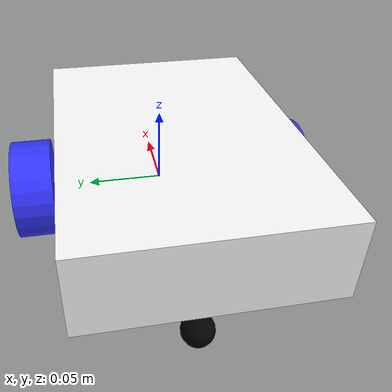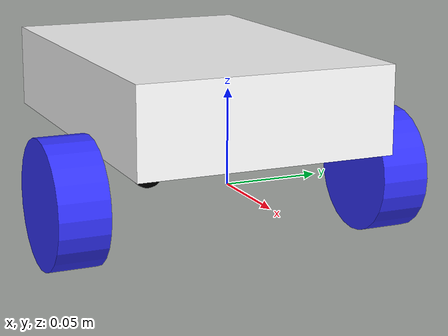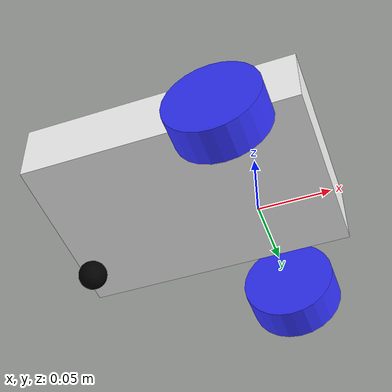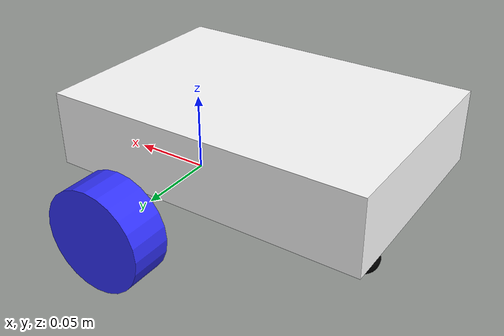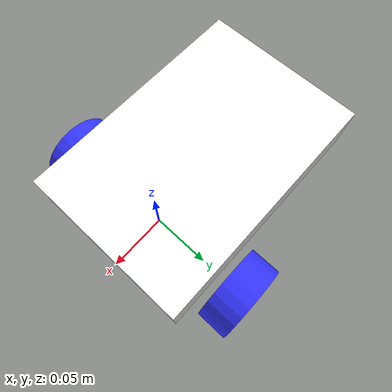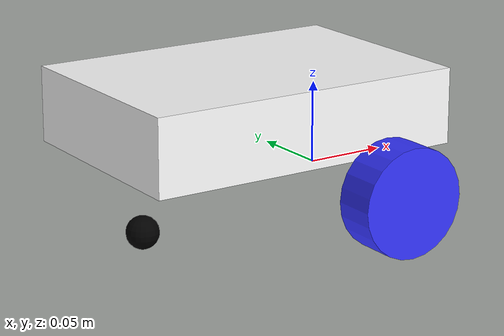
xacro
<?xml version="1.0"?>
<robot xmlns:xacro="http://www.ros.org/wiki/xacro">
    <xacro:include filename="inertial_macros.xacro"/>

    <xacro:property name="chassis_length" value="0.198"/>
    <xacro:property name="chassis_width" value="0.135"/>
    <xacro:property name="chassis_height" value="0.046"/>
    <xacro:property name="chassis_mass" value="1.0"/>
    <xacro:property name="wheel_radius" value="0.033"/>
    <xacro:property name="wheel_thickness" value="0.026"/>
    <xacro:property name="wheel_mass" value="0.05"/>
    <xacro:property name="wheel_offset_x" value="0.148"/>
    <xacro:property name="wheel_offset_y" value="0.087"/>
    <xacro:property name="wheel_offset_z" value="-0.02"/>
    <xacro:property name="caster_wheel_radius" value="0.01"/>
    <xacro:property name="caster_wheel_mass" value="0.01"/>
    <xacro:property name="caster_wheel_offset_x" value="0.028"/>
    <xacro:property name="caster_wheel_offset_z" value="${wheel_offset_z - wheel_radius + caster_wheel_radius}"/>

    <material name="white">
        <color rgba="1 1 1 1"/>
    </material>

    <material name="orange">
        <color rgba="1 0.3 0.1 1"/>
    </material>

    <material name="blue">
        <color rgba="0.2 0.2 1 1"/>
    </material>

    <material name="black">
        <color rgba="0 0 0 1"/>
    </material>

    <material name="red">
        <color rgba="1 0 0 1"/>
    </material>

    <link name="base_link">

    </link>

    <!-- BASE_FOOTPRINT -->

    <joint name="base_footprint_joint" type="fixed">
        <parent link="base_link"/>
        <child link="base_footprint"/>
        <origin xyz="0 0 0" rpy="0 0 0"/>
    </joint>

    <link name="base_footprint">
    </link>

    <!-- CHASSIS -->

    <joint name="chassis_joint" type="fixed">
        <parent link="base_link"/>
        <child link="chassis"/>
        <origin xyz="${-wheel_offset_x} 0 ${-wheel_offset_z}"/>
    </joint>

    <link name="chassis">
        <visual>
            <origin xyz="${chassis_length/2} 0 ${chassis_height/2}" rpy="0.0 0.0 0.0"/>
            <geometry>
                <box size="${chassis_length} ${chassis_width} ${chassis_height}"/>
            </geometry>
            <material name="white"/>
        </visual>
        <collision>
            <origin xyz="${chassis_length/2} 0 ${chassis_height/2}" rpy="0.0 0.0 0.0"/>
            <geometry>
                <box size="${chassis_length} ${chassis_width} ${chassis_height}"/>
            </geometry>
        </collision>
        <xacro:inertial_box mass="${chassis_mass}" x="${chassis_length}" y="${chassis_width}" z="${chassis_height}">
            <origin xyz="${chassis_length/2} 0 ${chassis_height/2}" rpy="0 0 0"/>
        </xacro:inertial_box>
    </link>

    <!-- LEFT WHEEL -->

    <joint name="left_wheel_joint" type="continuous">
        <parent link="base_link"/>
        <child link="left_wheel"/>
        <origin xyz="0.0 ${wheel_offset_y} 0.0" rpy="-${pi/2} 0.0 0.0"/>
        <axis xyz="0.0 0.0 1"/>
    </joint>

    <link name="left_wheel">
        <visual>
            <geometry>
                <cylinder radius="${wheel_radius}" length="${wheel_thickness}"/>
            </geometry>
            <material name="blue"/>
        </visual>
        <collision>
            <geometry>
                <sphere radius="${wheel_radius}"/>
            </geometry>
        </collision>
        <xacro:inertial_cylinder mass="${wheel_mass}" length="${wheel_thickness}" radius="${wheel_radius}">
            <origin xyz="0 0 0" rpy="0 0 0"/>
        </xacro:inertial_cylinder>
    </link>

    <!-- RIGHT WHEEL -->

    <joint name="right_wheel_joint" type="continuous">
        <parent link="base_link"/>
        <child link="right_wheel"/>
        <origin xyz="0.0 -${wheel_offset_y} 0.0" rpy="${pi/2} 0.0 0.0"/>
        <axis xyz="0.0 0.0 -1"/>
    </joint>

    <link name="right_wheel">
        <visual>
            <geometry>
                <cylinder radius="${wheel_radius}" length="${wheel_thickness}"/>
            </geometry>
            <material name="blue"/>
        </visual>
        <collision>
            <geometry>
                <sphere radius="${wheel_radius}"/>
            </geometry>
        </collision>
        <xacro:inertial_cylinder mass="${wheel_mass}" length="${wheel_thickness}" radius="${wheel_radius}">
            <origin xyz="0 0 0" rpy="0 0 0"/>
        </xacro:inertial_cylinder>
    </link>

    <!-- CASTER WHEEL -->

    <joint name="caster_wheel_joint" type="fixed">
        <parent link="chassis"/>
        <child link="caster_wheel"/>
        <origin xyz="${caster_wheel_offset_x} 0.0 ${caster_wheel_offset_z}" rpy="0.0 0.0 0.0"/>

    </joint>

    <link name="caster_wheel">
        <visual>
            <geometry>
                <sphere radius="${caster_wheel_radius}"/>
            </geometry>
            <material name="black"/>
        </visual>
        <collision>
            <geometry>
                <sphere radius="${caster_wheel_radius}"/>
            </geometry>
        </collision>
        <xacro:inertial_sphere mass="${caster_wheel_mass}" radius="${caster_wheel_radius}">
            <origin xyz="0 0 0" rpy="0 0 0"/>
        </xacro:inertial_sphere>
    </link>
    <gazebo reference="caster_wheel">
        <mu1 value="0.001"/>
        <mu2 value="0.001"/>
    </gazebo>

</robot>
